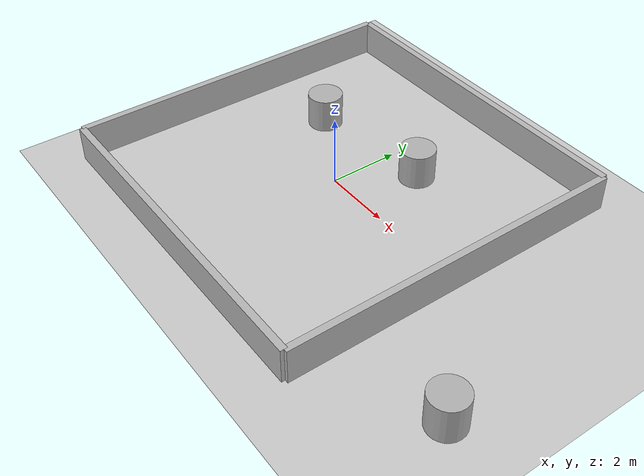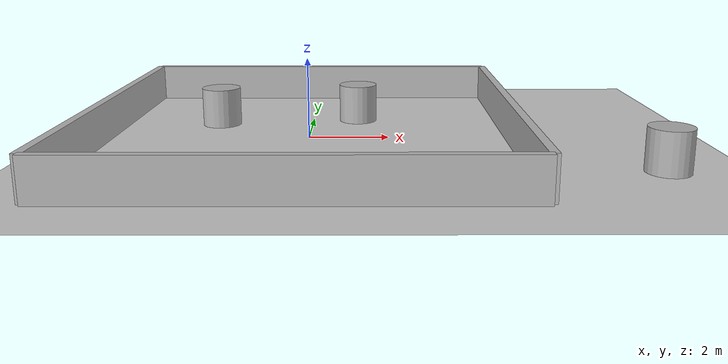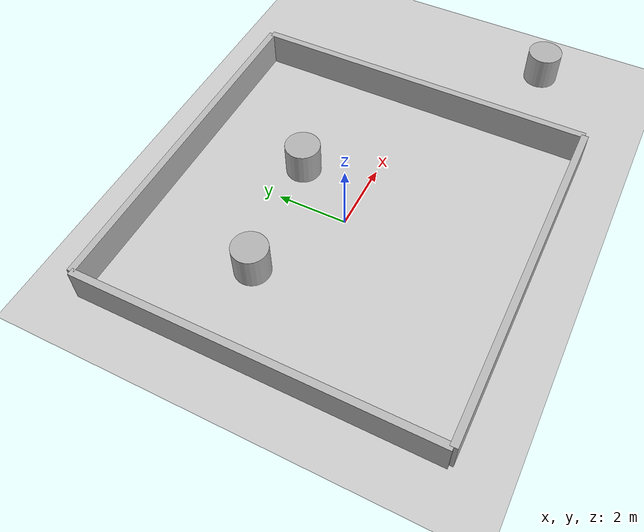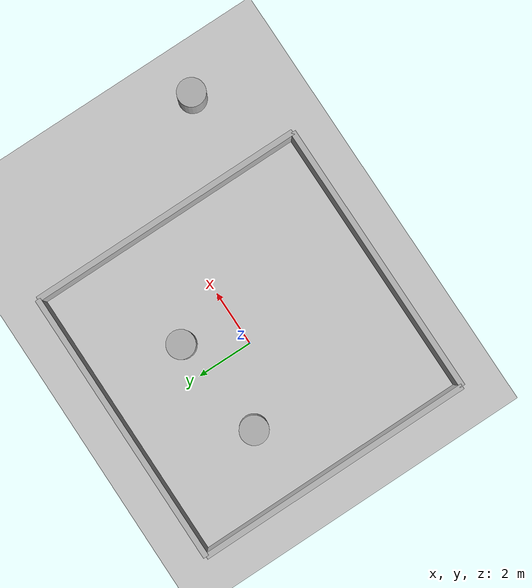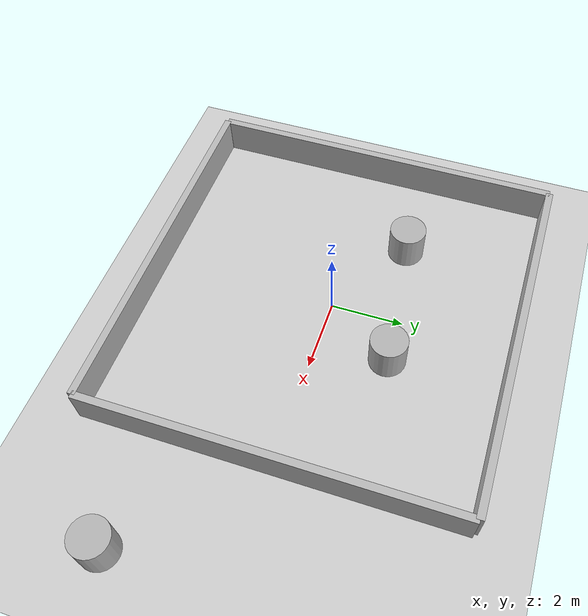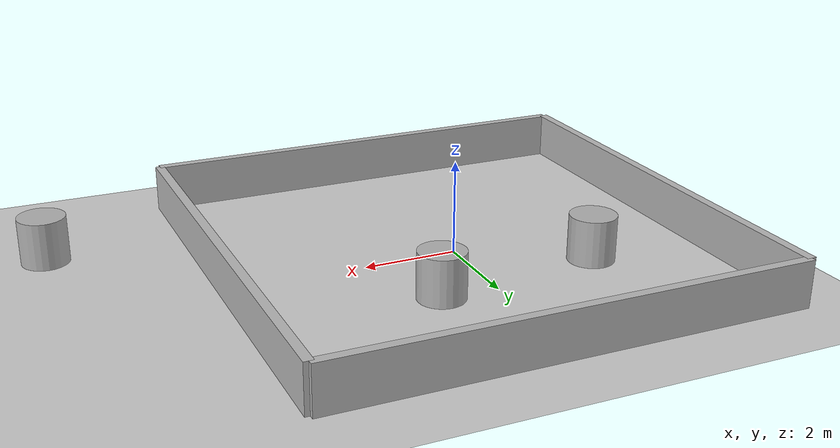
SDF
<sdf version='1.10'>
  <world name='default'>
    <physics type='ode'>
      <real_time_update_rate>1000</real_time_update_rate>
      <max_step_size>0.001</max_step_size>
      <real_time_factor>1</real_time_factor>
      <ode>
        <solver>
          <type>quick</type>
          <iters>150</iters>
          <precon_iters>0</precon_iters>
          <sor>1.3999999999999999</sor>
          <use_dynamic_moi_rescaling>true</use_dynamic_moi_rescaling>
        </solver>
        <constraints>
          <cfm>1.0000000000000001e-05</cfm>
          <erp>0.20000000000000001</erp>
          <contact_max_correcting_vel>2000</contact_max_correcting_vel>
          <contact_surface_layer>0.01</contact_surface_layer>
        </constraints>
      </ode>
    </physics>
    <plugin name='gz::sim::systems::Physics' filename='gz-sim-physics-system'/>
    <plugin name='gz::sim::systems::UserCommands' filename='gz-sim-user-commands-system'/>
    <plugin name='gz::sim::systems::SceneBroadcaster' filename='gz-sim-scene-broadcaster-system'/>
    <plugin name='gz::sim::systems::Sensors' filename='gz-sim-sensors-system'>
      <render_engine>ogre2</render_engine>
    </plugin>
    <plugin name='gz::sim::systems::Imu' filename='gz-sim-imu-system'/>
    <gravity>0 0 -9.8000000000000007</gravity>
    <magnetic_field>5.5644999999999998e-06 2.2875799999999999e-05 -4.2388400000000002e-05</magnetic_field>
    <atmosphere type='adiabatic'/>
    <scene>
      <ambient>0.400000006 0.400000006 0.400000006 1</ambient>
      <background>0.699999988 0.699999988 0.699999988 1</background>
      <shadows>true</shadows>
    </scene>
    <include>
      <uri>https://fuel.gazebosim.org/1.0/OpenRobotics/models/Ground Plane</uri>
      <name>ground_plane</name>
      <pose>0 0 0 0 0 0</pose>
    </include>
    <model name='north_wall'>
      <static>true</static>
      <pose>0 5 0.5 0 0 0</pose>
      <link name='link'>
        <collision name='collision'>
          <geometry>
            <box>
              <size>10 0.20000000000000001 1</size>
            </box>
          </geometry>
          <surface>
            <friction>
              <ode/>
            </friction>
            <bounce/>
            <contact/>
          </surface>
        </collision>
        <visual name='visual'>
          <geometry>
            <box>
              <size>10 0.20000000000000001 1</size>
            </box>
          </geometry>
        </visual>
        <pose>0 0 0 0 0 0</pose>
        <inertial>
          <pose>0 0 0 0 0 0</pose>
          <mass>1</mass>
          <inertia>
            <ixx>1</ixx>
            <ixy>0</ixy>
            <ixz>0</ixz>
            <iyy>1</iyy>
            <iyz>0</iyz>
            <izz>1</izz>
          </inertia>
        </inertial>
        <enable_wind>false</enable_wind>
      </link>
      <self_collide>false</self_collide>
    </model>
    <model name='south_wall'>
      <static>true</static>
      <pose>0 -5 0.5 0 0 0</pose>
      <link name='link'>
        <collision name='collision'>
          <geometry>
            <box>
              <size>10 0.20000000000000001 1</size>
            </box>
          </geometry>
          <surface>
            <friction>
              <ode/>
            </friction>
            <bounce/>
            <contact/>
          </surface>
        </collision>
        <visual name='visual'>
          <geometry>
            <box>
              <size>10 0.20000000000000001 1</size>
            </box>
          </geometry>
        </visual>
        <pose>0 0 0 0 0 0</pose>
        <inertial>
          <pose>0 0 0 0 0 0</pose>
          <mass>1</mass>
          <inertia>
            <ixx>1</ixx>
            <ixy>0</ixy>
            <ixz>0</ixz>
            <iyy>1</iyy>
            <iyz>0</iyz>
            <izz>1</izz>
          </inertia>
        </inertial>
        <enable_wind>false</enable_wind>
      </link>
      <self_collide>false</self_collide>
    </model>
    <model name='east_wall'>
      <static>true</static>
      <pose>5 0 0.5 0 0 0</pose>
      <link name='link'>
        <collision name='collision'>
          <geometry>
            <box>
              <size>0.20000000000000001 10 1</size>
            </box>
          </geometry>
          <surface>
            <friction>
              <ode/>
            </friction>
            <bounce/>
            <contact/>
          </surface>
        </collision>
        <visual name='visual'>
          <geometry>
            <box>
              <size>0.20000000000000001 10 1</size>
            </box>
          </geometry>
        </visual>
        <pose>0 0 0 0 0 0</pose>
        <inertial>
          <pose>0 0 0 0 0 0</pose>
          <mass>1</mass>
          <inertia>
            <ixx>1</ixx>
            <ixy>0</ixy>
            <ixz>0</ixz>
            <iyy>1</iyy>
            <iyz>0</iyz>
            <izz>1</izz>
          </inertia>
        </inertial>
        <enable_wind>false</enable_wind>
      </link>
      <self_collide>false</self_collide>
    </model>
    <model name='west_wall'>
      <static>true</static>
      <pose>-5 0 0.5 0 0 0</pose>
      <link name='link'>
        <collision name='collision'>
          <geometry>
            <box>
              <size>0.20000000000000001 10 1</size>
            </box>
          </geometry>
          <surface>
            <friction>
              <ode/>
            </friction>
            <bounce/>
            <contact/>
          </surface>
        </collision>
        <visual name='visual'>
          <geometry>
            <box>
              <size>0.20000000000000001 10 1</size>
            </box>
          </geometry>
        </visual>
        <pose>0 0 0 0 0 0</pose>
        <inertial>
          <pose>0 0 0 0 0 0</pose>
          <mass>1</mass>
          <inertia>
            <ixx>1</ixx>
            <ixy>0</ixy>
            <ixz>0</ixz>
            <iyy>1</iyy>
            <iyz>0</iyz>
            <izz>1</izz>
          </inertia>
        </inertial>
        <enable_wind>false</enable_wind>
      </link>
      <self_collide>false</self_collide>
    </model>

    <model name='cylinder'>
      <pose>1.1980899774544476 1.9048066128227024 0.49999942638036005 4.6261078491286379e-19 2.0831655629567678e-19 1.3915987572372052e-20</pose>
      <link name='cylinder_link'>
        <inertial>
          <inertia>
            <ixx>0.14580000000000001</ixx>
            <ixy>0</ixy>
            <ixz>0</ixz>
            <iyy>0.14580000000000001</iyy>
            <iyz>0</iyz>
            <izz>0.125</izz>
          </inertia>
          <mass>1</mass>
          <pose>0 0 0 0 0 0</pose>
        </inertial>
        <collision name='cylinder_collision'>
          <geometry>
            <cylinder>
              <radius>0.5</radius>
              <length>1</length>
            </cylinder>
          </geometry>
          <surface>
            <friction>
              <ode/>
            </friction>
            <bounce/>
            <contact/>
          </surface>
        </collision>
        <visual name='cylinder_visual'>
          <geometry>
            <cylinder>
              <radius>0.5</radius>
              <length>1</length>
            </cylinder>
          </geometry>
          <material>
            <ambient>0.300000012 0.300000012 0.300000012 1</ambient>
            <diffuse>0.699999988 0.699999988 0.699999988 1</diffuse>
            <specular>1 1 1 1</specular>
          </material>
        </visual>
        <pose>0 0 0 0 0 0</pose>
        <enable_wind>false</enable_wind>
      </link>
      <static>false</static>
      <self_collide>false</self_collide>
    </model>
    <model name='cylinder_0'>
      <pose>-2.4488467805527838 1.4506659938535267 0.49999942638036005 -3.3121117328885818e-19 -1.4949271946170482e-19 1.4232421738338536e-20</pose>
      <link name='cylinder_link'>
        <inertial>
          <inertia>
            <ixx>0.14580000000000001</ixx>
            <ixy>0</ixy>
            <ixz>0</ixz>
            <iyy>0.14580000000000001</iyy>
            <iyz>0</iyz>
            <izz>0.125</izz>
          </inertia>
          <mass>1</mass>
          <pose>0 0 0 0 0 0</pose>
        </inertial>
        <collision name='cylinder_collision'>
          <geometry>
            <cylinder>
              <radius>0.5</radius>
              <length>1</length>
            </cylinder>
          </geometry>
          <surface>
            <friction>
              <ode/>
            </friction>
            <bounce/>
            <contact/>
          </surface>
        </collision>
        <visual name='cylinder_visual'>
          <geometry>
            <cylinder>
              <radius>0.5</radius>
              <length>1</length>
            </cylinder>
          </geometry>
          <material>
            <ambient>0.300000012 0.300000012 0.300000012 1</ambient>
            <diffuse>0.699999988 0.699999988 0.699999988 1</diffuse>
            <specular>1 1 1 1</specular>
          </material>
        </visual>
        <pose>0 0 0 0 0 0</pose>
        <enable_wind>false</enable_wind>
      </link>
      <static>false</static>
      <self_collide>false</self_collide>
    </model>
    <model name='cylinder_1'>
      <pose>7.9355492336454567 -2.9423504203801238 0.49999942638036005 1.7482423940744588e-19 -7.5318867129901243e-20 4.2001418825085737e-21</pose>
      <link name='cylinder_link'>
        <inertial>
          <inertia>
            <ixx>0.14580000000000001</ixx>
            <ixy>0</ixy>
            <ixz>0</ixz>
            <iyy>0.14580000000000001</iyy>
            <iyz>0</iyz>
            <izz>0.125</izz>
          </inertia>
          <mass>1</mass>
          <pose>0 0 0 0 0 0</pose>
        </inertial>
        <collision name='cylinder_collision'>
          <geometry>
            <cylinder>
              <radius>0.5</radius>
              <length>1</length>
            </cylinder>
          </geometry>
          <surface>
            <friction>
              <ode/>
            </friction>
            <bounce/>
            <contact/>
          </surface>
        </collision>
        <visual name='cylinder_visual'>
          <geometry>
            <cylinder>
              <radius>0.5</radius>
              <length>1</length>
            </cylinder>
          </geometry>
          <material>
            <ambient>0.300000012 0.300000012 0.300000012 1</ambient>
            <diffuse>0.699999988 0.699999988 0.699999988 1</diffuse>
            <specular>1 1 1 1</specular>
          </material>
        </visual>
        <pose>0 0 0 0 0 0</pose>
        <enable_wind>false</enable_wind>
      </link>
      <static>false</static>
      <self_collide>false</self_collide>
    </model>
    <light name='sun' type='directional'>
      <pose>0 0 10 0 0 0</pose>
      <cast_shadows>true</cast_shadows>
      <intensity>1</intensity>
      <direction>-0.5 0.10000000000000001 -0.90000000000000002</direction>
      <diffuse>0.800000012 0.800000012 0.800000012 1</diffuse>
      <specular>0.200000003 0.200000003 0.200000003 1</specular>
      <attenuation>
        <range>1000</range>
        <linear>0.01</linear>
        <constant>0.90000000000000002</constant>
        <quadratic>0.001</quadratic>
      </attenuation>
      <spot>
        <inner_angle>0</inner_angle>
        <outer_angle>0</outer_angle>
        <falloff>0</falloff>
      </spot>
    </light>
  </world>
</sdf>
